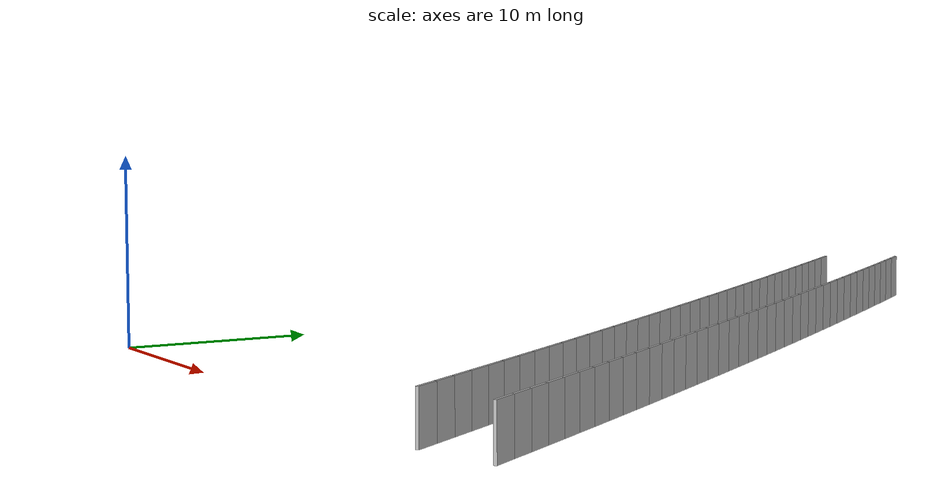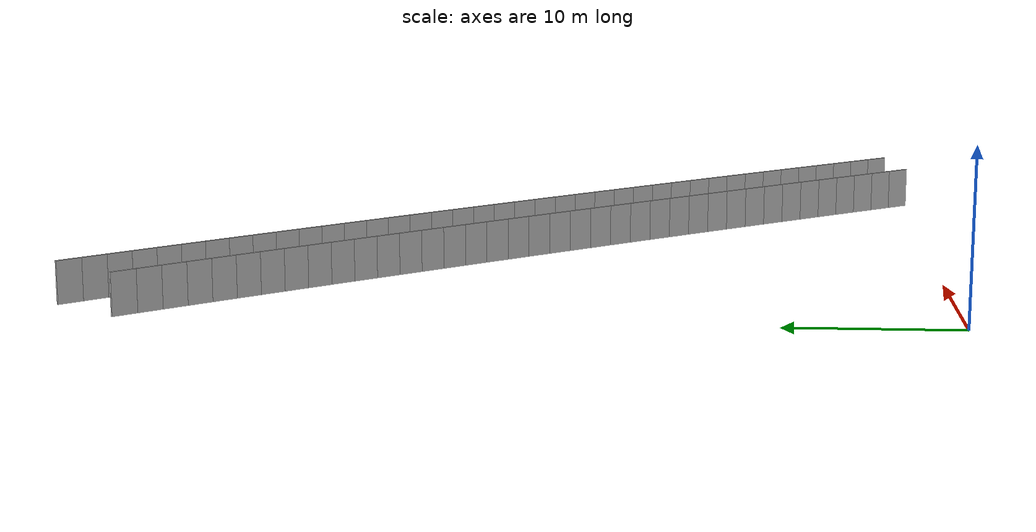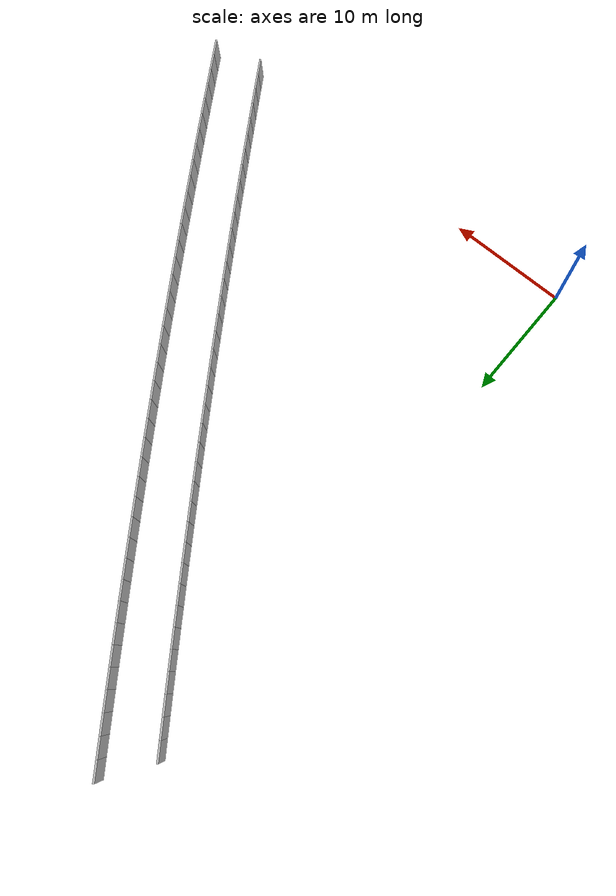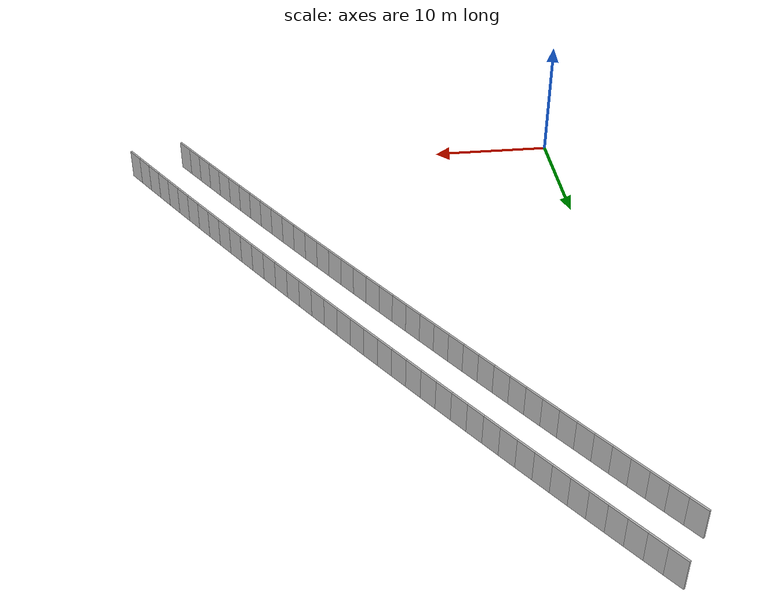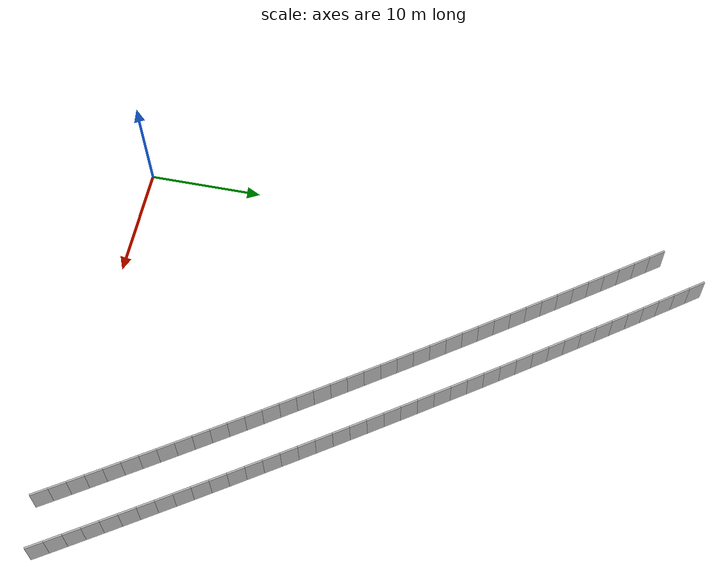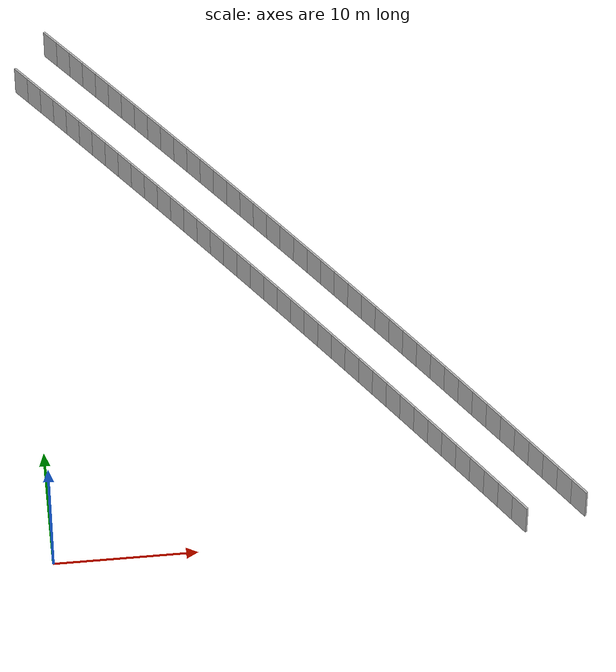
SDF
<?xml version="1.0" ?>
<sdf version="1.6">
  <model name="sps_4238">
    <pose frame="">0 0 0 0 -0 0</pose>
    <static>1</static>
    <self_collide>0</self_collide>
    <allow_auto_disable>0</allow_auto_disable>
    <link name="Wall10285">
      <kinematic>0</kinematic>
      <gravity>1</gravity>
      <self_collide>0</self_collide>
      <collision name="collision">
        <geometry>
          <box>
            <size>1.49652 0.15 2.5</size>
          </box>
        </geometry>
        <pose frame="">0 0 0 0 -0 0</pose>
      </collision>
      <visual name="visual">
        <geometry>
          <box>
            <size>1.49652 0.15 2.5</size>
          </box>
        </geometry>
        <pose frame="">0 0 0 0 -0 0</pose>
        <cast_shadows>1</cast_shadows>
        <transparency>0.0</transparency>
      </visual>
      <pose frame="">32.3198 0.0690145 1.25 0 -0 2.14588</pose>
    </link>
    <link name="Wall10286">
      <kinematic>0</kinematic>
      <gravity>1</gravity>
      <self_collide>0</self_collide>
      <collision name="collision">
        <geometry>
          <box>
            <size>1.49657 0.15 2.5</size>
          </box>
        </geometry>
        <pose frame="">0 0 0 0 -0 0</pose>
      </collision>
      <visual name="visual">
        <geometry>
          <box>
            <size>1.49657 0.15 2.5</size>
          </box>
        </geometry>
        <pose frame="">0 0 0 0 -0 0</pose>
        <cast_shadows>1</cast_shadows>
        <transparency>0.0</transparency>
      </visual>
      <pose frame="">31.5048 1.32411 1.25 0 -0 2.14766</pose>
    </link>
    <link name="Wall10287">
      <kinematic>0</kinematic>
      <gravity>1</gravity>
      <self_collide>0</self_collide>
      <collision name="collision">
        <geometry>
          <box>
            <size>1.49646 0.15 2.5</size>
          </box>
        </geometry>
        <pose frame="">0 0 0 0 -0 0</pose>
      </collision>
      <visual name="visual">
        <geometry>
          <box>
            <size>1.49646 0.15 2.5</size>
          </box>
        </geometry>
        <pose frame="">0 0 0 0 -0 0</pose>
        <cast_shadows>1</cast_shadows>
        <transparency>0.0</transparency>
      </visual>
      <pose frame="">30.6876 2.5778 1.25 0 -0 2.14926</pose>
    </link>
    <link name="Wall10288">
      <kinematic>0</kinematic>
      <gravity>1</gravity>
      <self_collide>0</self_collide>
      <collision name="collision">
        <geometry>
          <box>
            <size>1.49644 0.15 2.5</size>
          </box>
        </geometry>
        <pose frame="">0 0 0 0 -0 0</pose>
      </collision>
      <visual name="visual">
        <geometry>
          <box>
            <size>1.49644 0.15 2.5</size>
          </box>
        </geometry>
        <pose frame="">0 0 0 0 -0 0</pose>
        <cast_shadows>1</cast_shadows>
        <transparency>0.0</transparency>
      </visual>
      <pose frame="">29.8685 3.83018 1.25 0 -0 2.15073</pose>
    </link>
    <link name="Wall10289">
      <kinematic>0</kinematic>
      <gravity>1</gravity>
      <self_collide>0</self_collide>
      <collision name="collision">
        <geometry>
          <box>
            <size>1.49658 0.15 2.5</size>
          </box>
        </geometry>
        <pose frame="">0 0 0 0 -0 0</pose>
      </collision>
      <visual name="visual">
        <geometry>
          <box>
            <size>1.49658 0.15 2.5</size>
          </box>
        </geometry>
        <pose frame="">0 0 0 0 -0 0</pose>
        <cast_shadows>1</cast_shadows>
        <transparency>0.0</transparency>
      </visual>
      <pose frame="">29.0474 5.08137 1.25 0 -0 2.15228</pose>
    </link>
    <link name="Wall10290">
      <kinematic>0</kinematic>
      <gravity>1</gravity>
      <self_collide>0</self_collide>
      <collision name="collision">
        <geometry>
          <box>
            <size>1.49648 0.15 2.5</size>
          </box>
        </geometry>
        <pose frame="">0 0 0 0 -0 0</pose>
      </collision>
      <visual name="visual">
        <geometry>
          <box>
            <size>1.49648 0.15 2.5</size>
          </box>
        </geometry>
        <pose frame="">0 0 0 0 -0 0</pose>
        <cast_shadows>1</cast_shadows>
        <transparency>0.0</transparency>
      </visual>
      <pose frame="">28.2244 6.33128 1.25 0 -0 2.15389</pose>
    </link>
    <link name="Wall10291">
      <kinematic>0</kinematic>
      <gravity>1</gravity>
      <self_collide>0</self_collide>
      <collision name="collision">
        <geometry>
          <box>
            <size>1.49655 0.15 2.5</size>
          </box>
        </geometry>
        <pose frame="">0 0 0 0 -0 0</pose>
      </collision>
      <visual name="visual">
        <geometry>
          <box>
            <size>1.49655 0.15 2.5</size>
          </box>
        </geometry>
        <pose frame="">0 0 0 0 -0 0</pose>
        <cast_shadows>1</cast_shadows>
        <transparency>0.0</transparency>
      </visual>
      <pose frame="">27.3993 7.57979 1.25 0 -0 2.15567</pose>
    </link>
    <link name="Wall10292">
      <kinematic>0</kinematic>
      <gravity>1</gravity>
      <self_collide>0</self_collide>
      <collision name="collision">
        <geometry>
          <box>
            <size>1.49651 0.15 2.5</size>
          </box>
        </geometry>
        <pose frame="">0 0 0 0 -0 0</pose>
      </collision>
      <visual name="visual">
        <geometry>
          <box>
            <size>1.49651 0.15 2.5</size>
          </box>
        </geometry>
        <pose frame="">0 0 0 0 -0 0</pose>
        <cast_shadows>1</cast_shadows>
        <transparency>0.0</transparency>
      </visual>
      <pose frame="">26.5722 8.82698 1.25 0 -0 2.1571</pose>
    </link>
    <link name="Wall10293">
      <kinematic>0</kinematic>
      <gravity>1</gravity>
      <self_collide>0</self_collide>
      <collision name="collision">
        <geometry>
          <box>
            <size>1.49648 0.15 2.5</size>
          </box>
        </geometry>
        <pose frame="">0 0 0 0 -0 0</pose>
      </collision>
      <visual name="visual">
        <geometry>
          <box>
            <size>1.49648 0.15 2.5</size>
          </box>
        </geometry>
        <pose frame="">0 0 0 0 -0 0</pose>
        <cast_shadows>1</cast_shadows>
        <transparency>0.0</transparency>
      </visual>
      <pose frame="">25.7432 10.0729 1.25 0 -0 2.15869</pose>
    </link>
    <link name="Wall10294">
      <kinematic>0</kinematic>
      <gravity>1</gravity>
      <self_collide>0</self_collide>
      <collision name="collision">
        <geometry>
          <box>
            <size>1.49656 0.15 2.5</size>
          </box>
        </geometry>
        <pose frame="">0 0 0 0 -0 0</pose>
      </collision>
      <visual name="visual">
        <geometry>
          <box>
            <size>1.49656 0.15 2.5</size>
          </box>
        </geometry>
        <pose frame="">0 0 0 0 -0 0</pose>
        <cast_shadows>1</cast_shadows>
        <transparency>0.0</transparency>
      </visual>
      <pose frame="">24.9123 11.3175 1.25 0 -0 2.16031</pose>
    </link>
    <link name="Wall10295">
      <kinematic>0</kinematic>
      <gravity>1</gravity>
      <self_collide>0</self_collide>
      <collision name="collision">
        <geometry>
          <box>
            <size>1.49628 0.15 2.5</size>
          </box>
        </geometry>
        <pose frame="">0 0 0 0 -0 0</pose>
      </collision>
      <visual name="visual">
        <geometry>
          <box>
            <size>1.49628 0.15 2.5</size>
          </box>
        </geometry>
        <pose frame="">0 0 0 0 -0 0</pose>
        <cast_shadows>1</cast_shadows>
        <transparency>0.0</transparency>
      </visual>
      <pose frame="">24.0793 12.5607 1.25 0 -0 2.16186</pose>
    </link>
    <link name="Wall10296">
      <kinematic>0</kinematic>
      <gravity>1</gravity>
      <self_collide>0</self_collide>
      <collision name="collision">
        <geometry>
          <box>
            <size>1.49665 0.15 2.5</size>
          </box>
        </geometry>
        <pose frame="">0 0 0 0 -0 0</pose>
      </collision>
      <visual name="visual">
        <geometry>
          <box>
            <size>1.49665 0.15 2.5</size>
          </box>
        </geometry>
        <pose frame="">0 0 0 0 -0 0</pose>
        <cast_shadows>1</cast_shadows>
        <transparency>0.0</transparency>
      </visual>
      <pose frame="">23.2444 13.8026 1.25 0 -0 2.16347</pose>
    </link>
    <link name="Wall10297">
      <kinematic>0</kinematic>
      <gravity>1</gravity>
      <self_collide>0</self_collide>
      <collision name="collision">
        <geometry>
          <box>
            <size>1.49606 0.15 2.5</size>
          </box>
        </geometry>
        <pose frame="">0 0 0 0 -0 0</pose>
      </collision>
      <visual name="visual">
        <geometry>
          <box>
            <size>1.49606 0.15 2.5</size>
          </box>
        </geometry>
        <pose frame="">0 0 0 0 -0 0</pose>
        <cast_shadows>1</cast_shadows>
        <transparency>0.0</transparency>
      </visual>
      <pose frame="">22.4073 15.0429 1.25 0 -0 2.16551</pose>
    </link>
    <link name="Wall10298">
      <kinematic>0</kinematic>
      <gravity>1</gravity>
      <self_collide>0</self_collide>
      <collision name="collision">
        <geometry>
          <box>
            <size>1.49644 0.15 2.5</size>
          </box>
        </geometry>
        <pose frame="">0 0 0 0 -0 0</pose>
      </collision>
      <visual name="visual">
        <geometry>
          <box>
            <size>1.49644 0.15 2.5</size>
          </box>
        </geometry>
        <pose frame="">0 0 0 0 -0 0</pose>
        <cast_shadows>1</cast_shadows>
        <transparency>0.0</transparency>
      </visual>
      <pose frame="">21.5684 16.2818 1.25 0 -0 2.16662</pose>
    </link>
    <link name="Wall10299">
      <kinematic>0</kinematic>
      <gravity>1</gravity>
      <self_collide>0</self_collide>
      <collision name="collision">
        <geometry>
          <box>
            <size>1.49671 0.15 2.5</size>
          </box>
        </geometry>
        <pose frame="">0 0 0 0 -0 0</pose>
      </collision>
      <visual name="visual">
        <geometry>
          <box>
            <size>1.49671 0.15 2.5</size>
          </box>
        </geometry>
        <pose frame="">0 0 0 0 -0 0</pose>
        <cast_shadows>1</cast_shadows>
        <transparency>0.0</transparency>
      </visual>
      <pose frame="">20.7275 17.5198 1.25 0 -0 2.16827</pose>
    </link>
    <link name="Wall10300">
      <kinematic>0</kinematic>
      <gravity>1</gravity>
      <self_collide>0</self_collide>
      <collision name="collision">
        <geometry>
          <box>
            <size>1.49654 0.15 2.5</size>
          </box>
        </geometry>
        <pose frame="">0 0 0 0 -0 0</pose>
      </collision>
      <visual name="visual">
        <geometry>
          <box>
            <size>1.49654 0.15 2.5</size>
          </box>
        </geometry>
        <pose frame="">0 0 0 0 -0 0</pose>
        <cast_shadows>1</cast_shadows>
        <transparency>0.0</transparency>
      </visual>
      <pose frame="">19.8846 18.7565 1.25 0 -0 2.16983</pose>
    </link>
    <link name="Wall10301">
      <kinematic>0</kinematic>
      <gravity>1</gravity>
      <self_collide>0</self_collide>
      <collision name="collision">
        <geometry>
          <box>
            <size>1.49656 0.15 2.5</size>
          </box>
        </geometry>
        <pose frame="">0 0 0 0 -0 0</pose>
      </collision>
      <visual name="visual">
        <geometry>
          <box>
            <size>1.49656 0.15 2.5</size>
          </box>
        </geometry>
        <pose frame="">0 0 0 0 -0 0</pose>
        <cast_shadows>1</cast_shadows>
        <transparency>0.0</transparency>
      </visual>
      <pose frame="">19.0398 19.9918 1.25 0 -0 2.17145</pose>
    </link>
    <link name="Wall10302">
      <kinematic>0</kinematic>
      <gravity>1</gravity>
      <self_collide>0</self_collide>
      <collision name="collision">
        <geometry>
          <box>
            <size>1.49641 0.15 2.5</size>
          </box>
        </geometry>
        <pose frame="">0 0 0 0 -0 0</pose>
      </collision>
      <visual name="visual">
        <geometry>
          <box>
            <size>1.49641 0.15 2.5</size>
          </box>
        </geometry>
        <pose frame="">0 0 0 0 -0 0</pose>
        <cast_shadows>1</cast_shadows>
        <transparency>0.0</transparency>
      </visual>
      <pose frame="">18.193 21.2257 1.25 0 -0 2.17295</pose>
    </link>
    <link name="Wall10303">
      <kinematic>0</kinematic>
      <gravity>1</gravity>
      <self_collide>0</self_collide>
      <collision name="collision">
        <geometry>
          <box>
            <size>1.49654 0.15 2.5</size>
          </box>
        </geometry>
        <pose frame="">0 0 0 0 -0 0</pose>
      </collision>
      <visual name="visual">
        <geometry>
          <box>
            <size>1.49654 0.15 2.5</size>
          </box>
        </geometry>
        <pose frame="">0 0 0 0 -0 0</pose>
        <cast_shadows>1</cast_shadows>
        <transparency>0.0</transparency>
      </visual>
      <pose frame="">17.3444 22.4583 1.25 0 -0 2.17452</pose>
    </link>
    <link name="Wall10304">
      <kinematic>0</kinematic>
      <gravity>1</gravity>
      <self_collide>0</self_collide>
      <collision name="collision">
        <geometry>
          <box>
            <size>1.4965 0.15 2.5</size>
          </box>
        </geometry>
        <pose frame="">0 0 0 0 -0 0</pose>
      </collision>
      <visual name="visual">
        <geometry>
          <box>
            <size>1.4965 0.15 2.5</size>
          </box>
        </geometry>
        <pose frame="">0 0 0 0 -0 0</pose>
        <cast_shadows>1</cast_shadows>
        <transparency>0.0</transparency>
      </visual>
      <pose frame="">16.4939 23.6896 1.25 0 -0 2.17613</pose>
    </link>
    <link name="Wall10305">
      <kinematic>0</kinematic>
      <gravity>1</gravity>
      <self_collide>0</self_collide>
      <collision name="collision">
        <geometry>
          <box>
            <size>1.49653 0.15 2.5</size>
          </box>
        </geometry>
        <pose frame="">0 0 0 0 -0 0</pose>
      </collision>
      <visual name="visual">
        <geometry>
          <box>
            <size>1.49653 0.15 2.5</size>
          </box>
        </geometry>
        <pose frame="">0 0 0 0 -0 0</pose>
        <cast_shadows>1</cast_shadows>
        <transparency>0.0</transparency>
      </visual>
      <pose frame="">15.6413 24.9195 1.25 0 -0 2.1778</pose>
    </link>
    <link name="Wall10306">
      <kinematic>0</kinematic>
      <gravity>1</gravity>
      <self_collide>0</self_collide>
      <collision name="collision">
        <geometry>
          <box>
            <size>1.49659 0.15 2.5</size>
          </box>
        </geometry>
        <pose frame="">0 0 0 0 -0 0</pose>
      </collision>
      <visual name="visual">
        <geometry>
          <box>
            <size>1.49659 0.15 2.5</size>
          </box>
        </geometry>
        <pose frame="">0 0 0 0 -0 0</pose>
        <cast_shadows>1</cast_shadows>
        <transparency>0.0</transparency>
      </visual>
      <pose frame="">14.7867 26.1481 1.25 0 -0 2.17922</pose>
    </link>
    <link name="Wall10307">
      <kinematic>0</kinematic>
      <gravity>1</gravity>
      <self_collide>0</self_collide>
      <collision name="collision">
        <geometry>
          <box>
            <size>1.49655 0.15 2.5</size>
          </box>
        </geometry>
        <pose frame="">0 0 0 0 -0 0</pose>
      </collision>
      <visual name="visual">
        <geometry>
          <box>
            <size>1.49655 0.15 2.5</size>
          </box>
        </geometry>
        <pose frame="">0 0 0 0 -0 0</pose>
        <cast_shadows>1</cast_shadows>
        <transparency>0.0</transparency>
      </visual>
      <pose frame="">13.9304 27.3754 1.25 0 -0 2.18082</pose>
    </link>
    <link name="Wall10308">
      <kinematic>0</kinematic>
      <gravity>1</gravity>
      <self_collide>0</self_collide>
      <collision name="collision">
        <geometry>
          <box>
            <size>1.4964 0.15 2.5</size>
          </box>
        </geometry>
        <pose frame="">0 0 0 0 -0 0</pose>
      </collision>
      <visual name="visual">
        <geometry>
          <box>
            <size>1.4964 0.15 2.5</size>
          </box>
        </geometry>
        <pose frame="">0 0 0 0 -0 0</pose>
        <cast_shadows>1</cast_shadows>
        <transparency>0.0</transparency>
      </visual>
      <pose frame="">13.0721 28.6013 1.25 0 -0 2.18239</pose>
    </link>
    <link name="Wall10309">
      <kinematic>0</kinematic>
      <gravity>1</gravity>
      <self_collide>0</self_collide>
      <collision name="collision">
        <geometry>
          <box>
            <size>1.49645 0.15 2.5</size>
          </box>
        </geometry>
        <pose frame="">0 0 0 0 -0 0</pose>
      </collision>
      <visual name="visual">
        <geometry>
          <box>
            <size>1.49645 0.15 2.5</size>
          </box>
        </geometry>
        <pose frame="">0 0 0 0 -0 0</pose>
        <cast_shadows>1</cast_shadows>
        <transparency>0.0</transparency>
      </visual>
      <pose frame="">12.2118 29.8257 1.25 0 -0 2.18421</pose>
    </link>
    <link name="Wall10310">
      <kinematic>0</kinematic>
      <gravity>1</gravity>
      <self_collide>0</self_collide>
      <collision name="collision">
        <geometry>
          <box>
            <size>1.49639 0.15 2.5</size>
          </box>
        </geometry>
        <pose frame="">0 0 0 0 -0 0</pose>
      </collision>
      <visual name="visual">
        <geometry>
          <box>
            <size>1.49639 0.15 2.5</size>
          </box>
        </geometry>
        <pose frame="">0 0 0 0 -0 0</pose>
        <cast_shadows>1</cast_shadows>
        <transparency>0.0</transparency>
      </visual>
      <pose frame="">11.3494 31.0487 1.25 0 -0 2.18564</pose>
    </link>
    <link name="Wall10311">
      <kinematic>0</kinematic>
      <gravity>1</gravity>
      <self_collide>0</self_collide>
      <collision name="collision">
        <geometry>
          <box>
            <size>1.49669 0.15 2.5</size>
          </box>
        </geometry>
        <pose frame="">0 0 0 0 -0 0</pose>
      </collision>
      <visual name="visual">
        <geometry>
          <box>
            <size>1.49669 0.15 2.5</size>
          </box>
        </geometry>
        <pose frame="">0 0 0 0 -0 0</pose>
        <cast_shadows>1</cast_shadows>
        <transparency>0.0</transparency>
      </visual>
      <pose frame="">10.4853 32.2705 1.25 0 -0 2.18719</pose>
    </link>
    <link name="Wall10312">
      <kinematic>0</kinematic>
      <gravity>1</gravity>
      <self_collide>0</self_collide>
      <collision name="collision">
        <geometry>
          <box>
            <size>1.49637 0.15 2.5</size>
          </box>
        </geometry>
        <pose frame="">0 0 0 0 -0 0</pose>
      </collision>
      <visual name="visual">
        <geometry>
          <box>
            <size>1.49637 0.15 2.5</size>
          </box>
        </geometry>
        <pose frame="">0 0 0 0 -0 0</pose>
        <cast_shadows>1</cast_shadows>
        <transparency>0.0</transparency>
      </visual>
      <pose frame="">9.61913 33.4909 1.25 0 -0 2.18879</pose>
    </link>
    <link name="Wall10313">
      <kinematic>0</kinematic>
      <gravity>1</gravity>
      <self_collide>0</self_collide>
      <collision name="collision">
        <geometry>
          <box>
            <size>1.49651 0.15 2.5</size>
          </box>
        </geometry>
        <pose frame="">0 0 0 0 -0 0</pose>
      </collision>
      <visual name="visual">
        <geometry>
          <box>
            <size>1.49651 0.15 2.5</size>
          </box>
        </geometry>
        <pose frame="">0 0 0 0 -0 0</pose>
        <cast_shadows>1</cast_shadows>
        <transparency>0.0</transparency>
      </visual>
      <pose frame="">8.75115 34.7099 1.25 0 -0 2.19033</pose>
    </link>
    <link name="Wall10314">
      <kinematic>0</kinematic>
      <gravity>1</gravity>
      <self_collide>0</self_collide>
      <collision name="collision">
        <geometry>
          <box>
            <size>1.49658 0.15 2.5</size>
          </box>
        </geometry>
        <pose frame="">0 0 0 0 -0 0</pose>
      </collision>
      <visual name="visual">
        <geometry>
          <box>
            <size>1.49658 0.15 2.5</size>
          </box>
        </geometry>
        <pose frame="">0 0 0 0 -0 0</pose>
        <cast_shadows>1</cast_shadows>
        <transparency>0.0</transparency>
      </visual>
      <pose frame="">7.88116 35.9276 1.25 0 -0 2.192</pose>
    </link>
    <link name="Wall10315">
      <kinematic>0</kinematic>
      <gravity>1</gravity>
      <self_collide>0</self_collide>
      <collision name="collision">
        <geometry>
          <box>
            <size>1.49652 0.15 2.5</size>
          </box>
        </geometry>
        <pose frame="">0 0 0 0 -0 0</pose>
      </collision>
      <visual name="visual">
        <geometry>
          <box>
            <size>1.49652 0.15 2.5</size>
          </box>
        </geometry>
        <pose frame="">0 0 0 0 -0 0</pose>
        <cast_shadows>1</cast_shadows>
        <transparency>0.0</transparency>
      </visual>
      <pose frame="">7.00924 37.1439 1.25 0 -0 2.19349</pose>
    </link>
    <link name="Wall10316">
      <kinematic>0</kinematic>
      <gravity>1</gravity>
      <self_collide>0</self_collide>
      <collision name="collision">
        <geometry>
          <box>
            <size>1.49661 0.15 2.5</size>
          </box>
        </geometry>
        <pose frame="">0 0 0 0 -0 0</pose>
      </collision>
      <visual name="visual">
        <geometry>
          <box>
            <size>1.49661 0.15 2.5</size>
          </box>
        </geometry>
        <pose frame="">0 0 0 0 -0 0</pose>
        <cast_shadows>1</cast_shadows>
        <transparency>0.0</transparency>
      </visual>
      <pose frame="">6.13534 38.3588 1.25 0 -0 2.19525</pose>
    </link>
    <link name="Wall10317">
      <kinematic>0</kinematic>
      <gravity>1</gravity>
      <self_collide>0</self_collide>
      <collision name="collision">
        <geometry>
          <box>
            <size>1.4964 0.15 2.5</size>
          </box>
        </geometry>
        <pose frame="">0 0 0 0 -0 0</pose>
      </collision>
      <visual name="visual">
        <geometry>
          <box>
            <size>1.4964 0.15 2.5</size>
          </box>
        </geometry>
        <pose frame="">0 0 0 0 -0 0</pose>
        <cast_shadows>1</cast_shadows>
        <transparency>0.0</transparency>
      </visual>
      <pose frame="">5.25954 39.5723 1.25 0 -0 2.19666</pose>
    </link>
    <link name="Wall10318">
      <kinematic>0</kinematic>
      <gravity>1</gravity>
      <self_collide>0</self_collide>
      <collision name="collision">
        <geometry>
          <box>
            <size>1.49649 0.15 2.5</size>
          </box>
        </geometry>
        <pose frame="">0 0 0 0 -0 0</pose>
      </collision>
      <visual name="visual">
        <geometry>
          <box>
            <size>1.49649 0.15 2.5</size>
          </box>
        </geometry>
        <pose frame="">0 0 0 0 -0 0</pose>
        <cast_shadows>1</cast_shadows>
        <transparency>0.0</transparency>
      </visual>
      <pose frame="">4.38195 40.7844 1.25 0 -0 2.19828</pose>
    </link>
    <link name="Wall10319">
      <kinematic>0</kinematic>
      <gravity>1</gravity>
      <self_collide>0</self_collide>
      <collision name="collision">
        <geometry>
          <box>
            <size>1.49654 0.15 2.5</size>
          </box>
        </geometry>
        <pose frame="">0 0 0 0 -0 0</pose>
      </collision>
      <visual name="visual">
        <geometry>
          <box>
            <size>1.49654 0.15 2.5</size>
          </box>
        </geometry>
        <pose frame="">0 0 0 0 -0 0</pose>
        <cast_shadows>1</cast_shadows>
        <transparency>0.0</transparency>
      </visual>
      <pose frame="">3.50234 41.9951 1.25 0 -0 2.19992</pose>
    </link>
    <link name="Wall10320">
      <kinematic>0</kinematic>
      <gravity>1</gravity>
      <self_collide>0</self_collide>
      <collision name="collision">
        <geometry>
          <box>
            <size>1.49651 0.15 2.5</size>
          </box>
        </geometry>
        <pose frame="">0 0 0 0 -0 0</pose>
      </collision>
      <visual name="visual">
        <geometry>
          <box>
            <size>1.49651 0.15 2.5</size>
          </box>
        </geometry>
        <pose frame="">0 0 0 0 -0 0</pose>
        <cast_shadows>1</cast_shadows>
        <transparency>0.0</transparency>
      </visual>
      <pose frame="">2.62075 43.2044 1.25 0 -0 2.20155</pose>
    </link>
    <link name="Wall10321">
      <kinematic>0</kinematic>
      <gravity>1</gravity>
      <self_collide>0</self_collide>
      <collision name="collision">
        <geometry>
          <box>
            <size>1.49651 0.15 2.5</size>
          </box>
        </geometry>
        <pose frame="">0 0 0 0 -0 0</pose>
      </collision>
      <visual name="visual">
        <geometry>
          <box>
            <size>1.49651 0.15 2.5</size>
          </box>
        </geometry>
        <pose frame="">0 0 0 0 -0 0</pose>
        <cast_shadows>1</cast_shadows>
        <transparency>0.0</transparency>
      </visual>
      <pose frame="">1.73727 44.4123 1.25 0 -0 2.20306</pose>
    </link>
    <link name="Wall10322">
      <kinematic>0</kinematic>
      <gravity>1</gravity>
      <self_collide>0</self_collide>
      <collision name="collision">
        <geometry>
          <box>
            <size>1.49646 0.15 2.5</size>
          </box>
        </geometry>
        <pose frame="">0 0 0 0 -0 0</pose>
      </collision>
      <visual name="visual">
        <geometry>
          <box>
            <size>1.49646 0.15 2.5</size>
          </box>
        </geometry>
        <pose frame="">0 0 0 0 -0 0</pose>
        <cast_shadows>1</cast_shadows>
        <transparency>0.0</transparency>
      </visual>
      <pose frame="">0.851951 45.6188 1.25 0 -0 2.20461</pose>
    </link>
    <link name="Wall10881">
      <kinematic>0</kinematic>
      <gravity>1</gravity>
      <self_collide>0</self_collide>
      <collision name="collision">
        <geometry>
          <box>
            <size>1.5031 0.15 2.5</size>
          </box>
        </geometry>
        <pose frame="">0 0 0 0 -0 0</pose>
      </collision>
      <visual name="visual">
        <geometry>
          <box>
            <size>1.5031 0.15 2.5</size>
          </box>
        </geometry>
        <pose frame="">0 0 0 0 -0 0</pose>
        <cast_shadows>1</cast_shadows>
        <transparency>0.0</transparency>
      </visual>
      <pose frame="">36.6104 1.05989 1.25 0 -0 2.1445</pose>
    </link>
    <link name="Wall10882">
      <kinematic>0</kinematic>
      <gravity>1</gravity>
      <self_collide>0</self_collide>
      <collision name="collision">
        <geometry>
          <box>
            <size>1.50312 0.15 2.5</size>
          </box>
        </geometry>
        <pose frame="">0 0 0 0 -0 0</pose>
      </collision>
      <visual name="visual">
        <geometry>
          <box>
            <size>1.50312 0.15 2.5</size>
          </box>
        </geometry>
        <pose frame="">0 0 0 0 -0 0</pose>
        <cast_shadows>1</cast_shadows>
        <transparency>0.0</transparency>
      </visual>
      <pose frame="">35.7936 2.3217 1.25 0 -0 2.14608</pose>
    </link>
    <link name="Wall10883">
      <kinematic>0</kinematic>
      <gravity>1</gravity>
      <self_collide>0</self_collide>
      <collision name="collision">
        <geometry>
          <box>
            <size>1.50324 0.15 2.5</size>
          </box>
        </geometry>
        <pose frame="">0 0 0 0 -0 0</pose>
      </collision>
      <visual name="visual">
        <geometry>
          <box>
            <size>1.50324 0.15 2.5</size>
          </box>
        </geometry>
        <pose frame="">0 0 0 0 -0 0</pose>
        <cast_shadows>1</cast_shadows>
        <transparency>0.0</transparency>
      </visual>
      <pose frame="">34.9748 3.58229 1.25 0 -0 2.14763</pose>
    </link>
    <link name="Wall10884">
      <kinematic>0</kinematic>
      <gravity>1</gravity>
      <self_collide>0</self_collide>
      <collision name="collision">
        <geometry>
          <box>
            <size>1.50288 0.15 2.5</size>
          </box>
        </geometry>
        <pose frame="">0 0 0 0 -0 0</pose>
      </collision>
      <visual name="visual">
        <geometry>
          <box>
            <size>1.50288 0.15 2.5</size>
          </box>
        </geometry>
        <pose frame="">0 0 0 0 -0 0</pose>
        <cast_shadows>1</cast_shadows>
        <transparency>0.0</transparency>
      </visual>
      <pose frame="">34.154 4.84151 1.25 0 -0 2.14919</pose>
    </link>
    <link name="Wall10885">
      <kinematic>0</kinematic>
      <gravity>1</gravity>
      <self_collide>0</self_collide>
      <collision name="collision">
        <geometry>
          <box>
            <size>1.50296 0.15 2.5</size>
          </box>
        </geometry>
        <pose frame="">0 0 0 0 -0 0</pose>
      </collision>
      <visual name="visual">
        <geometry>
          <box>
            <size>1.50296 0.15 2.5</size>
          </box>
        </geometry>
        <pose frame="">0 0 0 0 -0 0</pose>
        <cast_shadows>1</cast_shadows>
        <transparency>0.0</transparency>
      </visual>
      <pose frame="">33.3314 6.09932 1.25 0 -0 2.15076</pose>
    </link>
    <link name="Wall10886">
      <kinematic>0</kinematic>
      <gravity>1</gravity>
      <self_collide>0</self_collide>
      <collision name="collision">
        <geometry>
          <box>
            <size>1.50314 0.15 2.5</size>
          </box>
        </geometry>
        <pose frame="">0 0 0 0 -0 0</pose>
      </collision>
      <visual name="visual">
        <geometry>
          <box>
            <size>1.50314 0.15 2.5</size>
          </box>
        </geometry>
        <pose frame="">0 0 0 0 -0 0</pose>
        <cast_shadows>1</cast_shadows>
        <transparency>0.0</transparency>
      </visual>
      <pose frame="">32.5067 7.35591 1.25 0 -0 2.15242</pose>
    </link>
    <link name="Wall10887">
      <kinematic>0</kinematic>
      <gravity>1</gravity>
      <self_collide>0</self_collide>
      <collision name="collision">
        <geometry>
          <box>
            <size>1.50315 0.15 2.5</size>
          </box>
        </geometry>
        <pose frame="">0 0 0 0 -0 0</pose>
      </collision>
      <visual name="visual">
        <geometry>
          <box>
            <size>1.50315 0.15 2.5</size>
          </box>
        </geometry>
        <pose frame="">0 0 0 0 -0 0</pose>
        <cast_shadows>1</cast_shadows>
        <transparency>0.0</transparency>
      </visual>
      <pose frame="">31.68 8.61131 1.25 0 -0 2.15383</pose>
    </link>
    <link name="Wall10888">
      <kinematic>0</kinematic>
      <gravity>1</gravity>
      <self_collide>0</self_collide>
      <collision name="collision">
        <geometry>
          <box>
            <size>1.50314 0.15 2.5</size>
          </box>
        </geometry>
        <pose frame="">0 0 0 0 -0 0</pose>
      </collision>
      <visual name="visual">
        <geometry>
          <box>
            <size>1.50314 0.15 2.5</size>
          </box>
        </geometry>
        <pose frame="">0 0 0 0 -0 0</pose>
        <cast_shadows>1</cast_shadows>
        <transparency>0.0</transparency>
      </visual>
      <pose frame="">30.8514 9.8654 1.25 0 -0 2.15559</pose>
    </link>
    <link name="Wall10889">
      <kinematic>0</kinematic>
      <gravity>1</gravity>
      <self_collide>0</self_collide>
      <collision name="collision">
        <geometry>
          <box>
            <size>1.50303 0.15 2.5</size>
          </box>
        </geometry>
        <pose frame="">0 0 0 0 -0 0</pose>
      </collision>
      <visual name="visual">
        <geometry>
          <box>
            <size>1.50303 0.15 2.5</size>
          </box>
        </geometry>
        <pose frame="">0 0 0 0 -0 0</pose>
        <cast_shadows>1</cast_shadows>
        <transparency>0.0</transparency>
      </visual>
      <pose frame="">30.0207 11.1181 1.25 0 -0 2.1571</pose>
    </link>
    <link name="Wall10890">
      <kinematic>0</kinematic>
      <gravity>1</gravity>
      <self_collide>0</self_collide>
      <collision name="collision">
        <geometry>
          <box>
            <size>1.50298 0.15 2.5</size>
          </box>
        </geometry>
        <pose frame="">0 0 0 0 -0 0</pose>
      </collision>
      <visual name="visual">
        <geometry>
          <box>
            <size>1.50298 0.15 2.5</size>
          </box>
        </geometry>
        <pose frame="">0 0 0 0 -0 0</pose>
        <cast_shadows>1</cast_shadows>
        <transparency>0.0</transparency>
      </visual>
      <pose frame="">29.1881 12.3694 1.25 0 -0 2.15873</pose>
    </link>
    <link name="Wall10891">
      <kinematic>0</kinematic>
      <gravity>1</gravity>
      <self_collide>0</self_collide>
      <collision name="collision">
        <geometry>
          <box>
            <size>1.50308 0.15 2.5</size>
          </box>
        </geometry>
        <pose frame="">0 0 0 0 -0 0</pose>
      </collision>
      <visual name="visual">
        <geometry>
          <box>
            <size>1.50308 0.15 2.5</size>
          </box>
        </geometry>
        <pose frame="">0 0 0 0 -0 0</pose>
        <cast_shadows>1</cast_shadows>
        <transparency>0.0</transparency>
      </visual>
      <pose frame="">28.3534 13.6194 1.25 0 -0 2.1603</pose>
    </link>
    <link name="Wall10892">
      <kinematic>0</kinematic>
      <gravity>1</gravity>
      <self_collide>0</self_collide>
      <collision name="collision">
        <geometry>
          <box>
            <size>1.50268 0.15 2.5</size>
          </box>
        </geometry>
        <pose frame="">0 0 0 0 -0 0</pose>
      </collision>
      <visual name="visual">
        <geometry>
          <box>
            <size>1.50268 0.15 2.5</size>
          </box>
        </geometry>
        <pose frame="">0 0 0 0 -0 0</pose>
        <cast_shadows>1</cast_shadows>
        <transparency>0.0</transparency>
      </visual>
      <pose frame="">27.5165 14.8677 1.25 0 -0 2.16253</pose>
    </link>
    <link name="Wall10893">
      <kinematic>0</kinematic>
      <gravity>1</gravity>
      <self_collide>0</self_collide>
      <collision name="collision">
        <geometry>
          <box>
            <size>1.50316 0.15 2.5</size>
          </box>
        </geometry>
        <pose frame="">0 0 0 0 -0 0</pose>
      </collision>
      <visual name="visual">
        <geometry>
          <box>
            <size>1.50316 0.15 2.5</size>
          </box>
        </geometry>
        <pose frame="">0 0 0 0 -0 0</pose>
        <cast_shadows>1</cast_shadows>
        <transparency>0.0</transparency>
      </visual>
      <pose frame="">26.6776 16.1147 1.25 0 -0 2.16344</pose>
    </link>
    <link name="Wall10894">
      <kinematic>0</kinematic>
      <gravity>1</gravity>
      <self_collide>0</self_collide>
      <collision name="collision">
        <geometry>
          <box>
            <size>1.50294 0.15 2.5</size>
          </box>
        </geometry>
        <pose frame="">0 0 0 0 -0 0</pose>
      </collision>
      <visual name="visual">
        <geometry>
          <box>
            <size>1.50294 0.15 2.5</size>
          </box>
        </geometry>
        <pose frame="">0 0 0 0 -0 0</pose>
        <cast_shadows>1</cast_shadows>
        <transparency>0.0</transparency>
      </visual>
      <pose frame="">25.8371 17.3608 1.25 0 -0 2.16496</pose>
    </link>
    <link name="Wall10895">
      <kinematic>0</kinematic>
      <gravity>1</gravity>
      <self_collide>0</self_collide>
      <collision name="collision">
        <geometry>
          <box>
            <size>1.50325 0.15 2.5</size>
          </box>
        </geometry>
        <pose frame="">0 0 0 0 -0 0</pose>
      </collision>
      <visual name="visual">
        <geometry>
          <box>
            <size>1.50325 0.15 2.5</size>
          </box>
        </geometry>
        <pose frame="">0 0 0 0 -0 0</pose>
        <cast_shadows>1</cast_shadows>
        <transparency>0.0</transparency>
      </visual>
      <pose frame="">24.9947 18.6056 1.25 0 -0 2.16664</pose>
    </link>
    <link name="Wall10896">
      <kinematic>0</kinematic>
      <gravity>1</gravity>
      <self_collide>0</self_collide>
      <collision name="collision">
        <geometry>
          <box>
            <size>1.50293 0.15 2.5</size>
          </box>
        </geometry>
        <pose frame="">0 0 0 0 -0 0</pose>
      </collision>
      <visual name="visual">
        <geometry>
          <box>
            <size>1.50293 0.15 2.5</size>
          </box>
        </geometry>
        <pose frame="">0 0 0 0 -0 0</pose>
        <cast_shadows>1</cast_shadows>
        <transparency>0.0</transparency>
      </visual>
      <pose frame="">24.1501 19.849 1.25 0 -0 2.1682</pose>
    </link>
    <link name="Wall10897">
      <kinematic>0</kinematic>
      <gravity>1</gravity>
      <self_collide>0</self_collide>
      <collision name="collision">
        <geometry>
          <box>
            <size>1.5032 0.15 2.5</size>
          </box>
        </geometry>
        <pose frame="">0 0 0 0 -0 0</pose>
      </collision>
      <visual name="visual">
        <geometry>
          <box>
            <size>1.5032 0.15 2.5</size>
          </box>
        </geometry>
        <pose frame="">0 0 0 0 -0 0</pose>
        <cast_shadows>1</cast_shadows>
        <transparency>0.0</transparency>
      </visual>
      <pose frame="">23.3037 21.0911 1.25 0 -0 2.1697</pose>
    </link>
    <link name="Wall10898">
      <kinematic>0</kinematic>
      <gravity>1</gravity>
      <self_collide>0</self_collide>
      <collision name="collision">
        <geometry>
          <box>
            <size>1.50305 0.15 2.5</size>
          </box>
        </geometry>
        <pose frame="">0 0 0 0 -0 0</pose>
      </collision>
      <visual name="visual">
        <geometry>
          <box>
            <size>1.50305 0.15 2.5</size>
          </box>
        </geometry>
        <pose frame="">0 0 0 0 -0 0</pose>
        <cast_shadows>1</cast_shadows>
        <transparency>0.0</transparency>
      </visual>
      <pose frame="">22.4553 22.3319 1.25 0 -0 2.17135</pose>
    </link>
    <link name="Wall10899">
      <kinematic>0</kinematic>
      <gravity>1</gravity>
      <self_collide>0</self_collide>
      <collision name="collision">
        <geometry>
          <box>
            <size>1.50298 0.15 2.5</size>
          </box>
        </geometry>
        <pose frame="">0 0 0 0 -0 0</pose>
      </collision>
      <visual name="visual">
        <geometry>
          <box>
            <size>1.50298 0.15 2.5</size>
          </box>
        </geometry>
        <pose frame="">0 0 0 0 -0 0</pose>
        <cast_shadows>1</cast_shadows>
        <transparency>0.0</transparency>
      </visual>
      <pose frame="">21.605 23.5712 1.25 0 -0 2.173</pose>
    </link>
    <link name="Wall10900">
      <kinematic>0</kinematic>
      <gravity>1</gravity>
      <self_collide>0</self_collide>
      <collision name="collision">
        <geometry>
          <box>
            <size>1.50315 0.15 2.5</size>
          </box>
        </geometry>
        <pose frame="">0 0 0 0 -0 0</pose>
      </collision>
      <visual name="visual">
        <geometry>
          <box>
            <size>1.50315 0.15 2.5</size>
          </box>
        </geometry>
        <pose frame="">0 0 0 0 -0 0</pose>
        <cast_shadows>1</cast_shadows>
        <transparency>0.0</transparency>
      </visual>
      <pose frame="">20.7526 24.8092 1.25 0 -0 2.1746</pose>
    </link>
    <link name="Wall10901">
      <kinematic>0</kinematic>
      <gravity>1</gravity>
      <self_collide>0</self_collide>
      <collision name="collision">
        <geometry>
          <box>
            <size>1.50302 0.15 2.5</size>
          </box>
        </geometry>
        <pose frame="">0 0 0 0 -0 0</pose>
      </collision>
      <visual name="visual">
        <geometry>
          <box>
            <size>1.50302 0.15 2.5</size>
          </box>
        </geometry>
        <pose frame="">0 0 0 0 -0 0</pose>
        <cast_shadows>1</cast_shadows>
        <transparency>0.0</transparency>
      </visual>
      <pose frame="">19.8982 26.0459 1.25 0 -0 2.17604</pose>
    </link>
    <link name="Wall10902">
      <kinematic>0</kinematic>
      <gravity>1</gravity>
      <self_collide>0</self_collide>
      <collision name="collision">
        <geometry>
          <box>
            <size>1.50315 0.15 2.5</size>
          </box>
        </geometry>
        <pose frame="">0 0 0 0 -0 0</pose>
      </collision>
      <visual name="visual">
        <geometry>
          <box>
            <size>1.50315 0.15 2.5</size>
          </box>
        </geometry>
        <pose frame="">0 0 0 0 -0 0</pose>
        <cast_shadows>1</cast_shadows>
        <transparency>0.0</transparency>
      </visual>
      <pose frame="">19.042 27.2812 1.25 0 -0 2.17781</pose>
    </link>
    <link name="Wall10903">
      <kinematic>0</kinematic>
      <gravity>1</gravity>
      <self_collide>0</self_collide>
      <collision name="collision">
        <geometry>
          <box>
            <size>1.50296 0.15 2.5</size>
          </box>
        </geometry>
        <pose frame="">0 0 0 0 -0 0</pose>
      </collision>
      <visual name="visual">
        <geometry>
          <box>
            <size>1.50296 0.15 2.5</size>
          </box>
        </geometry>
        <pose frame="">0 0 0 0 -0 0</pose>
        <cast_shadows>1</cast_shadows>
        <transparency>0.0</transparency>
      </visual>
      <pose frame="">18.1836 28.5151 1.25 0 -0 2.17933</pose>
    </link>
    <link name="Wall10904">
      <kinematic>0</kinematic>
      <gravity>1</gravity>
      <self_collide>0</self_collide>
      <collision name="collision">
        <geometry>
          <box>
            <size>1.50321 0.15 2.5</size>
          </box>
        </geometry>
        <pose frame="">0 0 0 0 -0 0</pose>
      </collision>
      <visual name="visual">
        <geometry>
          <box>
            <size>1.50321 0.15 2.5</size>
          </box>
        </geometry>
        <pose frame="">0 0 0 0 -0 0</pose>
        <cast_shadows>1</cast_shadows>
        <transparency>0.0</transparency>
      </visual>
      <pose frame="">17.3234 29.7477 1.25 0 -0 2.18085</pose>
    </link>
    <link name="Wall10905">
      <kinematic>0</kinematic>
      <gravity>1</gravity>
      <self_collide>0</self_collide>
      <collision name="collision">
        <geometry>
          <box>
            <size>1.50282 0.15 2.5</size>
          </box>
        </geometry>
        <pose frame="">0 0 0 0 -0 0</pose>
      </collision>
      <visual name="visual">
        <geometry>
          <box>
            <size>1.50282 0.15 2.5</size>
          </box>
        </geometry>
        <pose frame="">0 0 0 0 -0 0</pose>
        <cast_shadows>1</cast_shadows>
        <transparency>0.0</transparency>
      </visual>
      <pose frame="">16.4614 30.9789 1.25 0 -0 2.18247</pose>
    </link>
    <link name="Wall10906">
      <kinematic>0</kinematic>
      <gravity>1</gravity>
      <self_collide>0</self_collide>
      <collision name="collision">
        <geometry>
          <box>
            <size>1.50322 0.15 2.5</size>
          </box>
        </geometry>
        <pose frame="">0 0 0 0 -0 0</pose>
      </collision>
      <visual name="visual">
        <geometry>
          <box>
            <size>1.50322 0.15 2.5</size>
          </box>
        </geometry>
        <pose frame="">0 0 0 0 -0 0</pose>
        <cast_shadows>1</cast_shadows>
        <transparency>0.0</transparency>
      </visual>
      <pose frame="">15.5973 32.2087 1.25 0 -0 2.18412</pose>
    </link>
    <link name="Wall10907">
      <kinematic>0</kinematic>
      <gravity>1</gravity>
      <self_collide>0</self_collide>
      <collision name="collision">
        <geometry>
          <box>
            <size>1.50305 0.15 2.5</size>
          </box>
        </geometry>
        <pose frame="">0 0 0 0 -0 0</pose>
      </collision>
      <visual name="visual">
        <geometry>
          <box>
            <size>1.50305 0.15 2.5</size>
          </box>
        </geometry>
        <pose frame="">0 0 0 0 -0 0</pose>
        <cast_shadows>1</cast_shadows>
        <transparency>0.0</transparency>
      </visual>
      <pose frame="">14.7311 33.4372 1.25 0 -0 2.18564</pose>
    </link>
    <link name="Wall10908">
      <kinematic>0</kinematic>
      <gravity>1</gravity>
      <self_collide>0</self_collide>
      <collision name="collision">
        <geometry>
          <box>
            <size>1.50303 0.15 2.5</size>
          </box>
        </geometry>
        <pose frame="">0 0 0 0 -0 0</pose>
      </collision>
      <visual name="visual">
        <geometry>
          <box>
            <size>1.50303 0.15 2.5</size>
          </box>
        </geometry>
        <pose frame="">0 0 0 0 -0 0</pose>
        <cast_shadows>1</cast_shadows>
        <transparency>0.0</transparency>
      </visual>
      <pose frame="">13.8632 34.6643 1.25 0 -0 2.18724</pose>
    </link>
    <link name="Wall10909">
      <kinematic>0</kinematic>
      <gravity>1</gravity>
      <self_collide>0</self_collide>
      <collision name="collision">
        <geometry>
          <box>
            <size>1.50314 0.15 2.5</size>
          </box>
        </geometry>
        <pose frame="">0 0 0 0 -0 0</pose>
      </collision>
      <visual name="visual">
        <geometry>
          <box>
            <size>1.50314 0.15 2.5</size>
          </box>
        </geometry>
        <pose frame="">0 0 0 0 -0 0</pose>
        <cast_shadows>1</cast_shadows>
        <transparency>0.0</transparency>
      </visual>
      <pose frame="">12.9933 35.8901 1.25 0 -0 2.18868</pose>
    </link>
    <link name="Wall10910">
      <kinematic>0</kinematic>
      <gravity>1</gravity>
      <self_collide>0</self_collide>
      <collision name="collision">
        <geometry>
          <box>
            <size>1.50297 0.15 2.5</size>
          </box>
        </geometry>
        <pose frame="">0 0 0 0 -0 0</pose>
      </collision>
      <visual name="visual">
        <geometry>
          <box>
            <size>1.50297 0.15 2.5</size>
          </box>
        </geometry>
        <pose frame="">0 0 0 0 -0 0</pose>
        <cast_shadows>1</cast_shadows>
        <transparency>0.0</transparency>
      </visual>
      <pose frame="">12.1215 37.1145 1.25 0 -0 2.19041</pose>
    </link>
    <link name="Wall10911">
      <kinematic>0</kinematic>
      <gravity>1</gravity>
      <self_collide>0</self_collide>
      <collision name="collision">
        <geometry>
          <box>
            <size>1.50305 0.15 2.5</size>
          </box>
        </geometry>
        <pose frame="">0 0 0 0 -0 0</pose>
      </collision>
      <visual name="visual">
        <geometry>
          <box>
            <size>1.50305 0.15 2.5</size>
          </box>
        </geometry>
        <pose frame="">0 0 0 0 -0 0</pose>
        <cast_shadows>1</cast_shadows>
        <transparency>0.0</transparency>
      </visual>
      <pose frame="">11.2477 38.3374 1.25 0 -0 2.19202</pose>
    </link>
    <link name="Wall10912">
      <kinematic>0</kinematic>
      <gravity>1</gravity>
      <self_collide>0</self_collide>
      <collision name="collision">
        <geometry>
          <box>
            <size>1.50323 0.15 2.5</size>
          </box>
        </geometry>
        <pose frame="">0 0 0 0 -0 0</pose>
      </collision>
      <visual name="visual">
        <geometry>
          <box>
            <size>1.50323 0.15 2.5</size>
          </box>
        </geometry>
        <pose frame="">0 0 0 0 -0 0</pose>
        <cast_shadows>1</cast_shadows>
        <transparency>0.0</transparency>
      </visual>
      <pose frame="">10.3718 39.559 1.25 0 -0 2.19358</pose>
    </link>
    <link name="Wall10913">
      <kinematic>0</kinematic>
      <gravity>1</gravity>
      <self_collide>0</self_collide>
      <collision name="collision">
        <geometry>
          <box>
            <size>1.50312 0.15 2.5</size>
          </box>
        </geometry>
        <pose frame="">0 0 0 0 -0 0</pose>
      </collision>
      <visual name="visual">
        <geometry>
          <box>
            <size>1.50312 0.15 2.5</size>
          </box>
        </geometry>
        <pose frame="">0 0 0 0 -0 0</pose>
        <cast_shadows>1</cast_shadows>
        <transparency>0.0</transparency>
      </visual>
      <pose frame="">9.49413 40.7793 1.25 0 -0 2.19508</pose>
    </link>
    <link name="Wall10914">
      <kinematic>0</kinematic>
      <gravity>1</gravity>
      <self_collide>0</self_collide>
      <collision name="collision">
        <geometry>
          <box>
            <size>1.50293 0.15 2.5</size>
          </box>
        </geometry>
        <pose frame="">0 0 0 0 -0 0</pose>
      </collision>
      <visual name="visual">
        <geometry>
          <box>
            <size>1.50293 0.15 2.5</size>
          </box>
        </geometry>
        <pose frame="">0 0 0 0 -0 0</pose>
        <cast_shadows>1</cast_shadows>
        <transparency>0.0</transparency>
      </visual>
      <pose frame="">8.61455 41.9981 1.25 0 -0 2.19678</pose>
    </link>
    <link name="Wall10915">
      <kinematic>0</kinematic>
      <gravity>1</gravity>
      <self_collide>0</self_collide>
      <collision name="collision">
        <geometry>
          <box>
            <size>1.5031 0.15 2.5</size>
          </box>
        </geometry>
        <pose frame="">0 0 0 0 -0 0</pose>
      </collision>
      <visual name="visual">
        <geometry>
          <box>
            <size>1.5031 0.15 2.5</size>
          </box>
        </geometry>
        <pose frame="">0 0 0 0 -0 0</pose>
        <cast_shadows>1</cast_shadows>
        <transparency>0.0</transparency>
      </visual>
      <pose frame="">7.73305 43.2155 1.25 0 -0 2.19825</pose>
    </link>
    <link name="Wall10916">
      <kinematic>0</kinematic>
      <gravity>1</gravity>
      <self_collide>0</self_collide>
      <collision name="collision">
        <geometry>
          <box>
            <size>1.50307 0.15 2.5</size>
          </box>
        </geometry>
        <pose frame="">0 0 0 0 -0 0</pose>
      </collision>
      <visual name="visual">
        <geometry>
          <box>
            <size>1.50307 0.15 2.5</size>
          </box>
        </geometry>
        <pose frame="">0 0 0 0 -0 0</pose>
        <cast_shadows>1</cast_shadows>
        <transparency>0.0</transparency>
      </visual>
      <pose frame="">6.84954 44.4315 1.25 0 -0 2.20002</pose>
    </link>
    <link name="Wall10917">
      <kinematic>0</kinematic>
      <gravity>1</gravity>
      <self_collide>0</self_collide>
      <collision name="collision">
        <geometry>
          <box>
            <size>1.50316 0.15 2.5</size>
          </box>
        </geometry>
        <pose frame="">0 0 0 0 -0 0</pose>
      </collision>
      <visual name="visual">
        <geometry>
          <box>
            <size>1.50316 0.15 2.5</size>
          </box>
        </geometry>
        <pose frame="">0 0 0 0 -0 0</pose>
        <cast_shadows>1</cast_shadows>
        <transparency>0.0</transparency>
      </visual>
      <pose frame="">5.96404 45.6461 1.25 0 -0 2.20148</pose>
    </link>
    <link name="Wall10918">
      <kinematic>0</kinematic>
      <gravity>1</gravity>
      <self_collide>0</self_collide>
      <collision name="collision">
        <geometry>
          <box>
            <size>1.50282 0.15 2.5</size>
          </box>
        </geometry>
        <pose frame="">0 0 0 0 -0 0</pose>
      </collision>
      <visual name="visual">
        <geometry>
          <box>
            <size>1.50282 0.15 2.5</size>
          </box>
        </geometry>
        <pose frame="">0 0 0 0 -0 0</pose>
        <cast_shadows>1</cast_shadows>
        <transparency>0.0</transparency>
      </visual>
      <pose frame="">5.07683 46.8593 1.25 0 -0 2.20296</pose>
    </link>
    <link name="Wall10919">
      <kinematic>0</kinematic>
      <gravity>1</gravity>
      <self_collide>0</self_collide>
      <collision name="collision">
        <geometry>
          <box>
            <size>1.50291 0.15 2.5</size>
          </box>
        </geometry>
        <pose frame="">0 0 0 0 -0 0</pose>
      </collision>
      <visual name="visual">
        <geometry>
          <box>
            <size>1.50291 0.15 2.5</size>
          </box>
        </geometry>
        <pose frame="">0 0 0 0 -0 0</pose>
        <cast_shadows>1</cast_shadows>
        <transparency>0.0</transparency>
      </visual>
      <pose frame="">4.18743 48.0707 1.25 0 -0 2.20523</pose>
    </link>
    <link name="Wall10920">
      <kinematic>0</kinematic>
      <gravity>1</gravity>
      <self_collide>0</self_collide>
      <collision name="collision">
        <geometry>
          <box>
            <size>1.50291 0.15 2.5</size>
          </box>
        </geometry>
        <pose frame="">0 0 0 0 -0 0</pose>
      </collision>
      <visual name="visual">
        <geometry>
          <box>
            <size>1.50291 0.15 2.5</size>
          </box>
        </geometry>
        <pose frame="">0 0 0 0 -0 0</pose>
        <cast_shadows>1</cast_shadows>
        <transparency>0.0</transparency>
      </visual>
      <pose frame="">3.29604 49.2807 1.25 0 -0 2.20619</pose>
    </link>
  </model>
</sdf>
